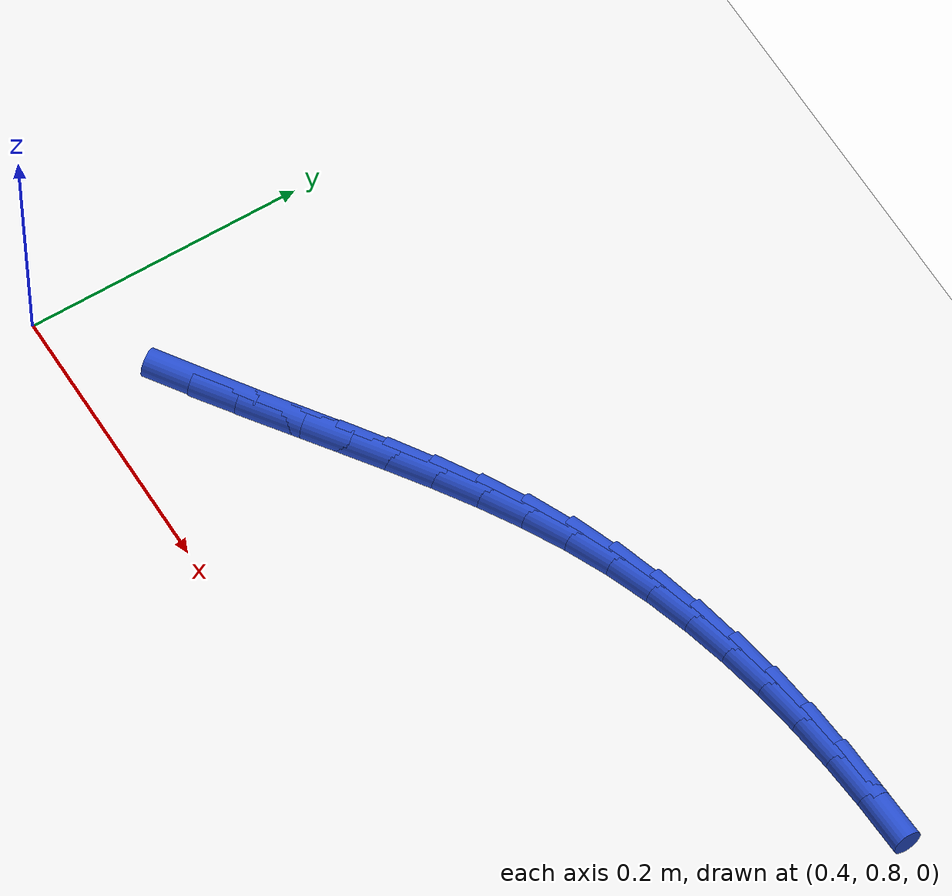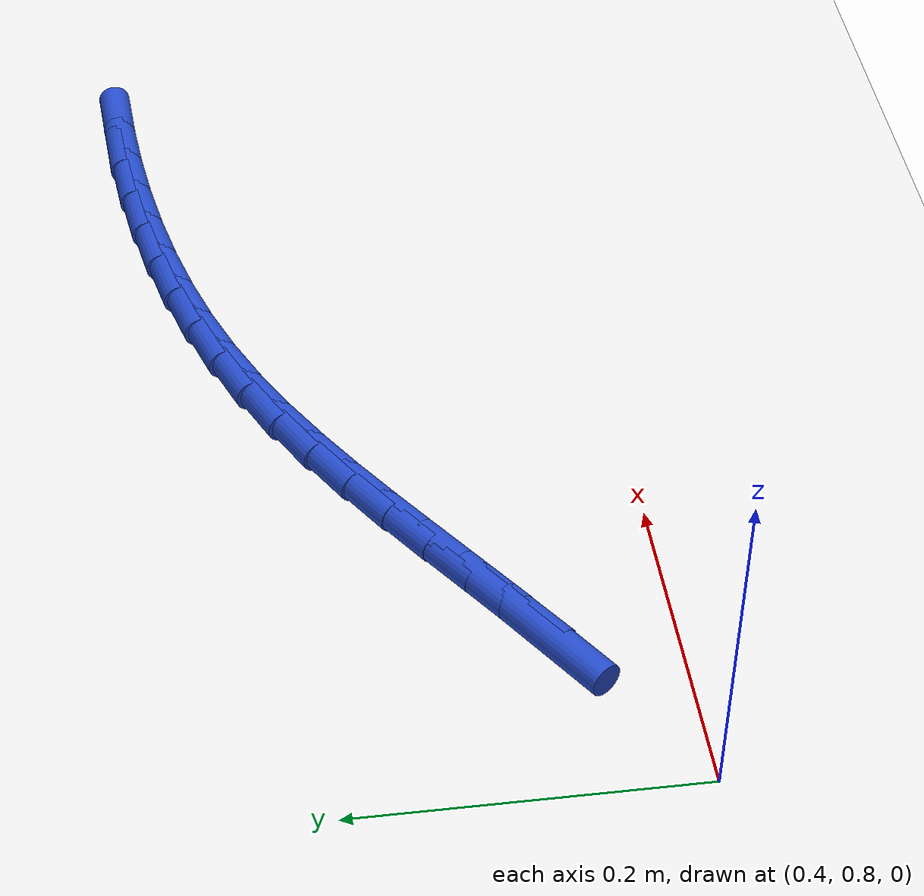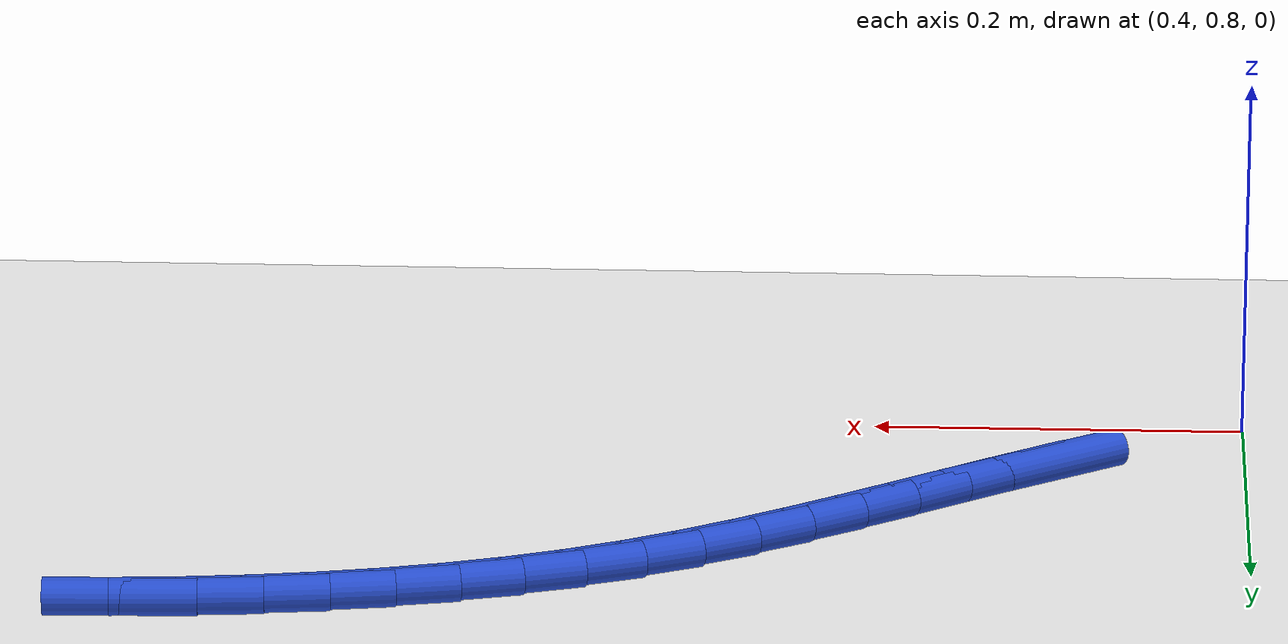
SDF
<sdf version="1.6">
 <world name="default">
  <model name="ground_plane">
   <static>1</static>
   <link name="link">
    <collision name="collision">
     <geometry><plane><normal>0 0 1</normal><size>100 100</size></plane></geometry>
     <surface><friction><ode><mu>100</mu><mu2>50</mu2></ode></friction></surface>
    </collision>
    <visual name="visual">
     <cast_shadows>0</cast_shadows>
     <geometry><plane><normal>0 0 1</normal><size>100 100</size></plane></geometry>
     <material>
      <script><uri>file://media/materials/scripts/gazebo.material</uri><name>Gazebo/WhiteGlow</name></script>
     </material>
    </visual>
   </link>
  </model>
  <model name="line">
   <link name="link_32">
    <pose>0.50120452542109 0.8697240768129104 0.01 0 1.57 0.5894997116436339</pose>
    <collision name="collision">
     <geometry><cylinder><radius>0.01</radius><length>0.08</length></cylinder></geometry>
    </collision>
    <visual name="visual">
     <material>
      <script><name>Gazebo/Blue</name><uri>file://media/materials/scripts/gazebo.material</uri></script>
     </material>
     <geometry><cylinder><radius>0.01</radius><length>0.08</length></cylinder></geometry>
    </visual>
   </link>
   <link name="link_33">
    <pose>0.5293323720646942 0.8885368615626432 0.01 0 1.57 0.6076348891645273</pose>
    <collision name="collision">
     <geometry><cylinder><radius>0.01</radius><length>0.08</length></cylinder></geometry>
    </collision>
    <visual name="visual">
     <material>
      <script><name>Gazebo/Blue</name><uri>file://media/materials/scripts/gazebo.material</uri></script>
     </material>
     <geometry><cylinder><radius>0.01</radius><length>0.08</length></cylinder></geometry>
    </visual>
   </link>
   <link name="link_34">
    <pose>0.5570192137686502 0.9077904083267422 0.01 0 1.57 0.6149055852538204</pose>
    <collision name="collision">
     <geometry><cylinder><radius>0.01</radius><length>0.08</length></cylinder></geometry>
    </collision>
    <visual name="visual">
     <material>
      <script><name>Gazebo/Blue</name><uri>file://media/materials/scripts/gazebo.material</uri></script>
     </material>
     <geometry><cylinder><radius>0.01</radius><length>0.08</length></cylinder></geometry>
    </visual>
   </link>
   <link name="link_35">
    <pose>0.5844559280675876 0.9271674765564978 0.01 0 1.57 0.6111946242654754</pose>
    <collision name="collision">
     <geometry><cylinder><radius>0.01</radius><length>0.08</length></cylinder></geometry>
    </collision>
    <visual name="visual">
     <material>
      <script><name>Gazebo/Blue</name><uri>file://media/materials/scripts/gazebo.material</uri></script>
     </material>
     <geometry><cylinder><radius>0.01</radius><length>0.08</length></cylinder></geometry>
    </visual>
   </link>
   <link name="link_36">
    <pose>0.611833392496136 0.9463508257031996 0.01 0 1.57 0.5963361657831775</pose>
    <collision name="collision">
     <geometry><cylinder><radius>0.01</radius><length>0.08</length></cylinder></geometry>
    </collision>
    <visual name="visual">
     <material>
      <script><name>Gazebo/Blue</name><uri>file://media/materials/scripts/gazebo.material</uri></script>
     </material>
     <geometry><cylinder><radius>0.01</radius><length>0.08</length></cylinder></geometry>
    </visual>
   </link>
   <link name="link_37">
    <pose>0.6393424845889257 0.9650232152181385 0.01 0 1.57 0.5701275995311553</pose>
    <collision name="collision">
     <geometry><cylinder><radius>0.01</radius><length>0.08</length></cylinder></geometry>
    </collision>
    <visual name="visual">
     <material>
      <script><name>Gazebo/Blue</name><uri>file://media/materials/scripts/gazebo.material</uri></script>
     </material>
     <geometry><cylinder><radius>0.01</radius><length>0.08</length></cylinder></geometry>
    </visual>
   </link>
   <link name="link_38">
    <pose>0.6671740818805866 0.9828674045526041 0.01 0 1.57 0.5323851207484867</pose>
    <collision name="collision">
     <geometry><cylinder><radius>0.01</radius><length>0.08</length></cylinder></geometry>
    </collision>
    <visual name="visual">
     <material>
      <script><name>Gazebo/Blue</name><uri>file://media/materials/scripts/gazebo.material</uri></script>
     </material>
     <geometry><cylinder><radius>0.01</radius><length>0.08</length></cylinder></geometry>
    </visual>
   </link>
   <link name="link_39">
    <pose>0.6955190619057483 0.9995661531578873 0.01 0 1.57 0.4830479582796917</pose>
    <collision name="collision">
     <geometry><cylinder><radius>0.01</radius><length>0.08</length></cylinder></geometry>
    </collision>
    <visual name="visual">
     <material>
      <script><name>Gazebo/Blue</name><uri>file://media/materials/scripts/gazebo.material</uri></script>
     </material>
     <geometry><cylinder><radius>0.01</radius><length>0.08</length></cylinder></geometry>
    </visual>
   </link>
   <link name="link_40">
    <pose>0.7245683021990408 1.0148022204852776 0.01 0 1.57 0.42286842526191754</pose>
    <collision name="collision">
     <geometry><cylinder><radius>0.01</radius><length>0.08</length></cylinder></geometry>
    </collision>
    <visual name="visual">
     <material>
      <script><name>Gazebo/Blue</name><uri>file://media/materials/scripts/gazebo.material</uri></script>
     </material>
     <geometry><cylinder><radius>0.01</radius><length>0.08</length></cylinder></geometry>
    </visual>
   </link>
   <link name="link_41">
    <pose>0.7545020701609287 1.0282729379728412 0.01 0 1.57 0.3605038200546781</pose>
    <collision name="collision">
     <geometry><cylinder><radius>0.01</radius><length>0.08</length></cylinder></geometry>
    </collision>
    <visual name="visual">
     <material>
      <script><name>Gazebo/Blue</name><uri>file://media/materials/scripts/gazebo.material</uri></script>
     </material>
     <geometry><cylinder><radius>0.01</radius><length>0.08</length></cylinder></geometry>
    </visual>
   </link>
   <link name="link_42">
    <pose>0.7853389071202563 1.039897752080008 0.01 0 1.57 0.30249084022194517</pose>
    <collision name="collision">
     <geometry><cylinder><radius>0.01</radius><length>0.08</length></cylinder></geometry>
    </collision>
    <visual name="visual">
     <material>
      <script><name>Gazebo/Blue</name><uri>file://media/materials/scripts/gazebo.material</uri></script>
     </material>
     <geometry><cylinder><radius>0.01</radius><length>0.08</length></cylinder></geometry>
    </visual>
   </link>
   <link name="link_43">
    <pose>0.8169713222094616 1.049769202223437 0.01 0 1.57 0.24893282365428235</pose>
    <collision name="collision">
     <geometry><cylinder><radius>0.01</radius><length>0.08</length></cylinder></geometry>
    </collision>
    <visual name="visual">
     <material>
      <script><name>Gazebo/Blue</name><uri>file://media/materials/scripts/gazebo.material</uri></script>
     </material>
     <geometry><cylinder><radius>0.01</radius><length>0.08</length></cylinder></geometry>
    </visual>
   </link>
   <link name="link_44">
    <pose>0.8492884926482439 1.0579844038776969 0.01 0 1.57 0.19967032997633932</pose>
    <collision name="collision">
     <geometry><cylinder><radius>0.01</radius><length>0.08</length></cylinder></geometry>
    </collision>
    <visual name="visual">
     <material>
      <script><name>Gazebo/Blue</name><uri>file://media/materials/scripts/gazebo.material</uri></script>
     </material>
     <geometry><cylinder><radius>0.01</radius><length>0.08</length></cylinder></geometry>
    </visual>
   </link>
   <link name="link_45">
    <pose>0.8821795956563026 1.0646404725173548 0.01 0 1.57 0.1544832267433729</pose>
    <collision name="collision">
     <geometry><cylinder><radius>0.01</radius><length>0.08</length></cylinder></geometry>
    </collision>
    <visual name="visual">
     <material>
      <script><name>Gazebo/Blue</name><uri>file://media/materials/scripts/gazebo.material</uri></script>
     </material>
     <geometry><cylinder><radius>0.01</radius><length>0.08</length></cylinder></geometry>
    </visual>
   </link>
   <link name="link_46">
    <pose>0.9155338084533374 1.0698345236169784 0.01 0 1.57 0.1131177367026334</pose>
    <collision name="collision">
     <geometry><cylinder><radius>0.01</radius><length>0.08</length></cylinder></geometry>
    </collision>
    <visual name="visual">
     <material>
      <script><name>Gazebo/Blue</name><uri>file://media/materials/scripts/gazebo.material</uri></script>
     </material>
     <geometry><cylinder><radius>0.01</radius><length>0.08</length></cylinder></geometry>
    </visual>
   </link>
   <link name="link_47">
    <pose>0.9492403082590476 1.0736636726511357 0.01 0 1.57 0.07530698040194173</pose>
    <collision name="collision">
     <geometry><cylinder><radius>0.01</radius><length>0.08</length></cylinder></geometry>
    </collision>
    <visual name="visual">
     <material>
      <script><name>Gazebo/Blue</name><uri>file://media/materials/scripts/gazebo.material</uri></script>
     </material>
     <geometry><cylinder><radius>0.01</radius><length>0.08</length></cylinder></geometry>
    </visual>
   </link>
   <link name="link_48">
    <pose>0.9831882722931327 1.076225035094394 0.01 0 1.57 0.04078570984300851</pose>
    <collision name="collision">
     <geometry><cylinder><radius>0.01</radius><length>0.08</length></cylinder></geometry>
    </collision>
    <visual name="visual">
     <material>
      <script><name>Gazebo/Blue</name><uri>file://media/materials/scripts/gazebo.material</uri></script>
     </material>
     <geometry><cylinder><radius>0.01</radius><length>0.08</length></cylinder></geometry>
    </visual>
   </link>
  </model>
 </world>
</sdf>
